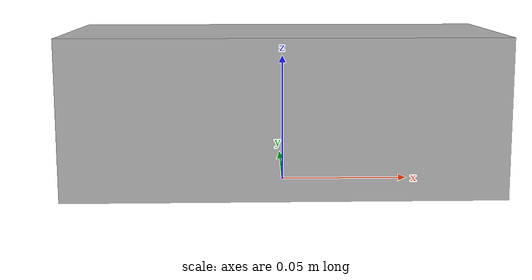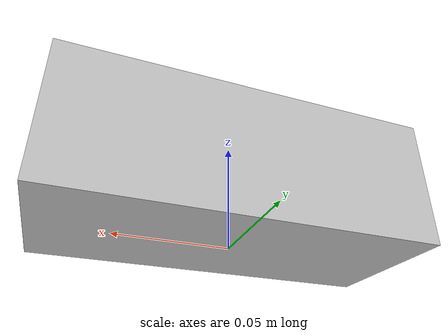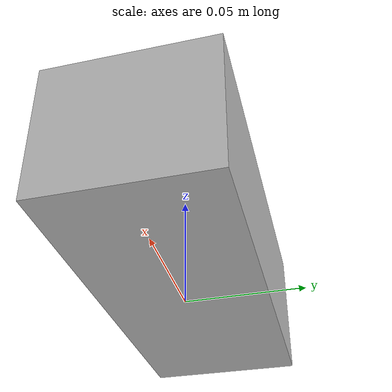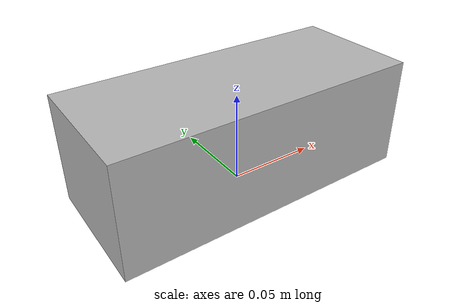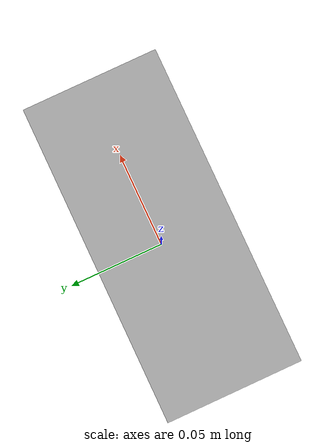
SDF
<?xml version="1.0" ?>
<sdf version="1.5">
    <model name="rectangular_box">
        <pose>0 0 0.03 0 0 0</pose>
        <static>false</static>
        <link name="link">
            <inertial>
              <mass>1.0</mass>
              <inertia>
                <!-- inertias are tricky to compute -->
                <!-- http://gazebosim.org/tutorials?tut=inertia&cat=build_robot -->
                <ixx>0.0007055</ixx>       <!-- for a box: ixx = 0.083 * mass * (y*y + z*z) -->
                <ixy>0.0</ixy>         <!-- for a box: ixy = 0 -->
                <ixz>0.0</ixz>         <!-- for a box: ixz = 0 -->
                <iyy>0.002558475</iyy>       <!-- for a box: iyy = 0.083 * mass * (x*x + z*z) -->
                <iyz>0.0</iyz>         <!-- for a box: iyz = 0 -->
                <izz>0.002666375</izz>       <!-- for a box: izz = 0.083 * mass * (x*x + y*y) -->
              </inertia>
            </inertial>
            <collision name="collision">
                <geometry>
                    <box>
                        <size>0.165 0.07 0.06</size>
                    </box>
                </geometry>
            </collision>

            <visual name="visual">
                <geometry>
                    <box>
                        <size>0.165 0.07 0.06</size>
                    </box>
                </geometry>
            </visual>
        </link>
    </model>
</sdf>
